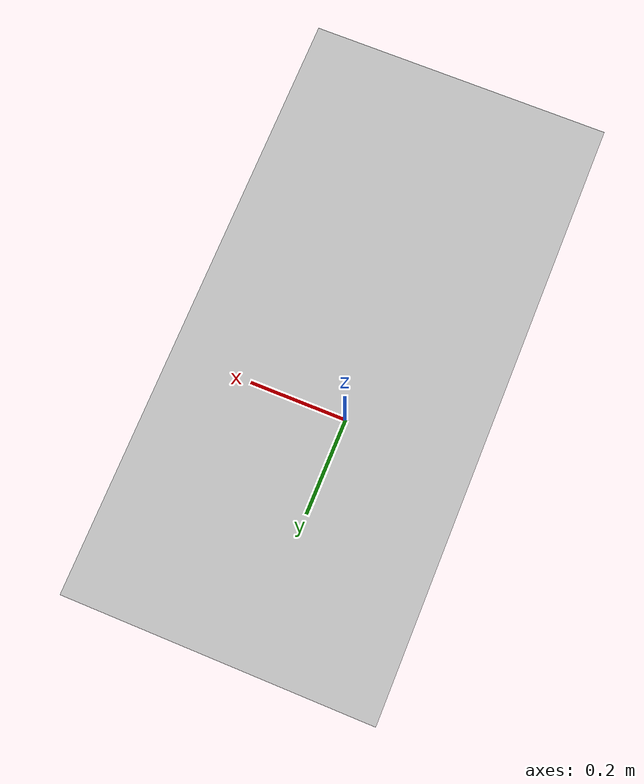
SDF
<?xml version='1.0'?>
<sdf version='1.7'>
  <model name='batiment_residence_01'>
  <static>true</static>
      <link name='body'>
        <visual name='visual'>
          <geometry>
            <mesh>
              <uri>file://models/batiment_residence_01/bat_res_01/bat_residence_01.dae</uri>
              <scale>1 1 1</scale>
            </mesh>
          </geometry>
        </visual>
        <collision name="collision">
          <geometry>
          <mesh>
            <uri>file://models/batiment_residence_01/bat_res_01/bat_residence_01.dae</uri>
            <scale>1 1 1</scale>
          </mesh>
          </geometry>
        </collision>
      </link>
  </model>
</sdf>
